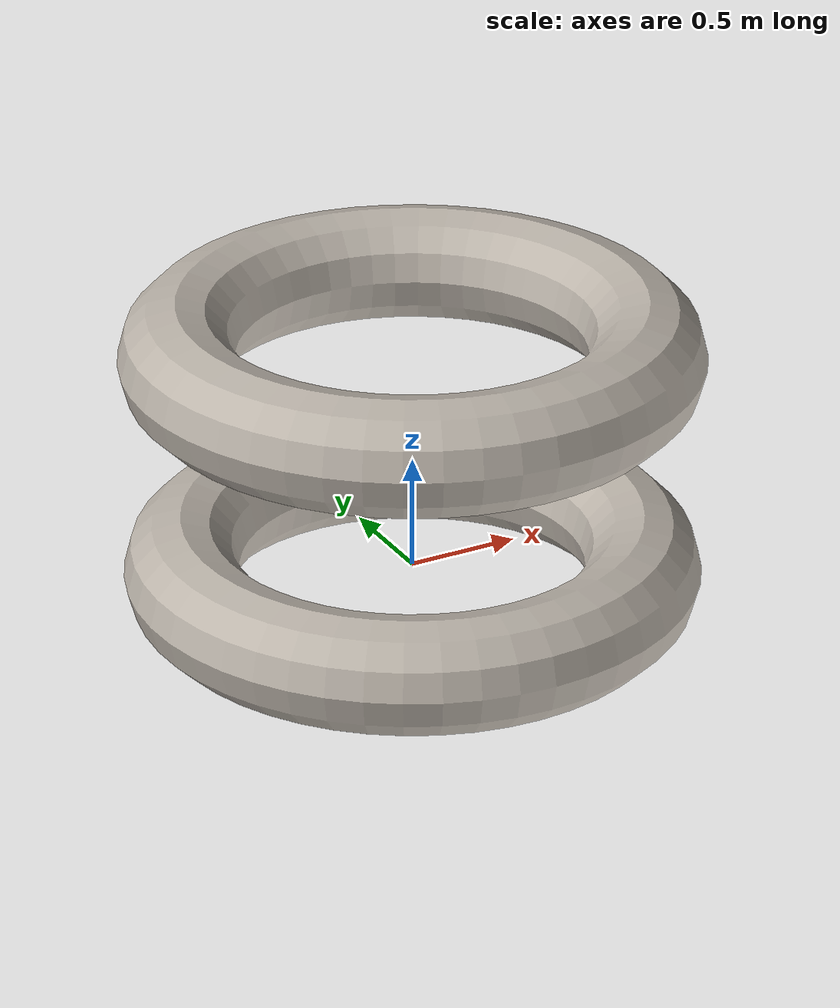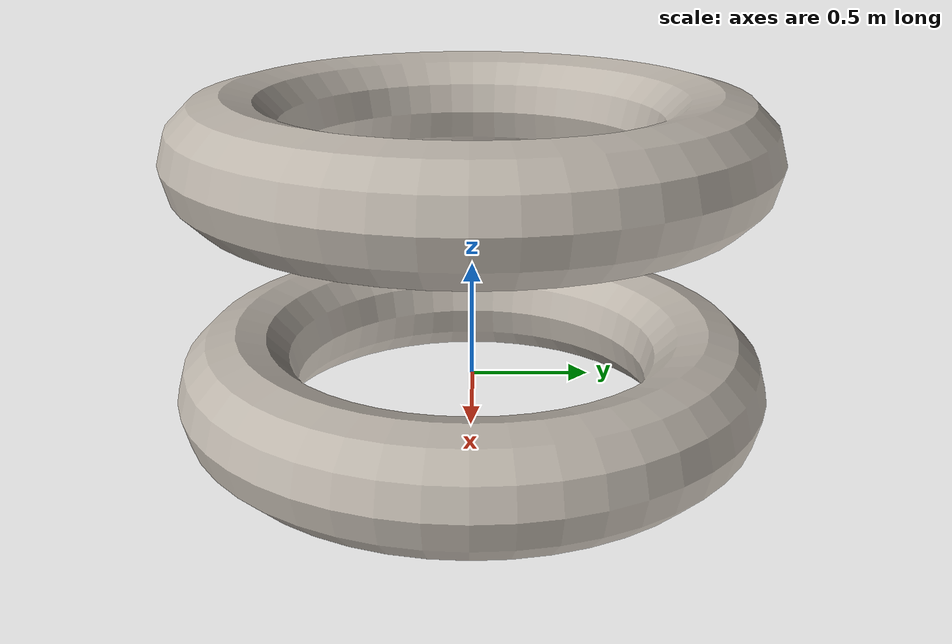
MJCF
<mujoco>
  <compiler assetdir="textured_torus"/>
  <asset>
    <mesh name="torus" file="textured_torus.obj"/>
    <mesh name="flipped_torus" file="textured_torus.obj" scale="-1 1 1"/>
    <texture file="carpet.png" type="2d"/>
    <material name="carpet" texture="carpet"/>
  </asset>
  <worldbody>
    <geom type="mesh" mesh="torus" material="carpet"/>
    <geom type="mesh" mesh="flipped_torus" material="carpet" pos="0 0 1"/>
  </worldbody>
</mujoco>
